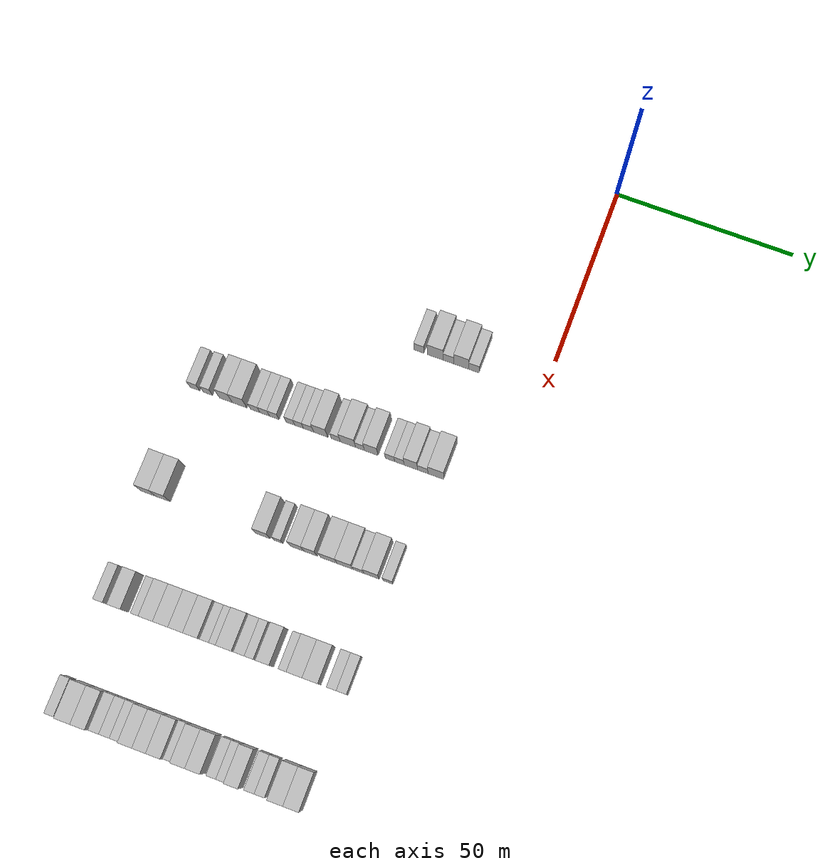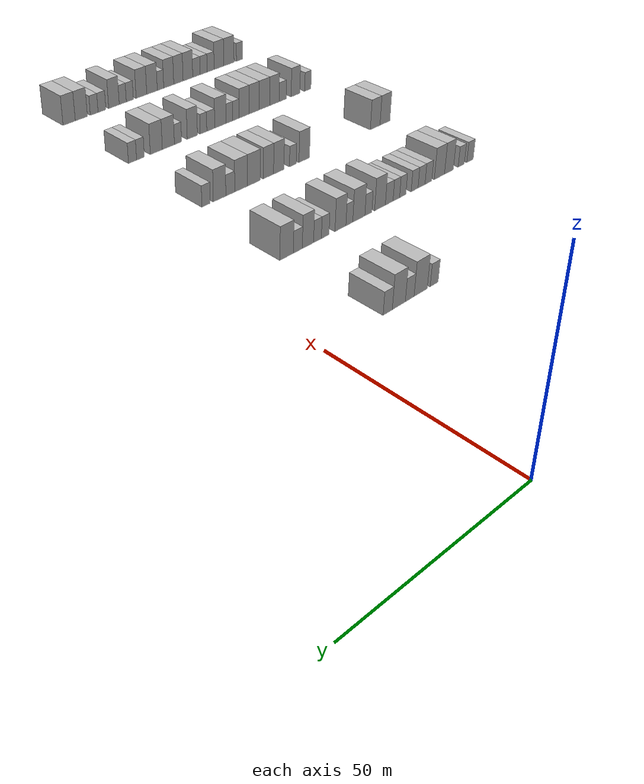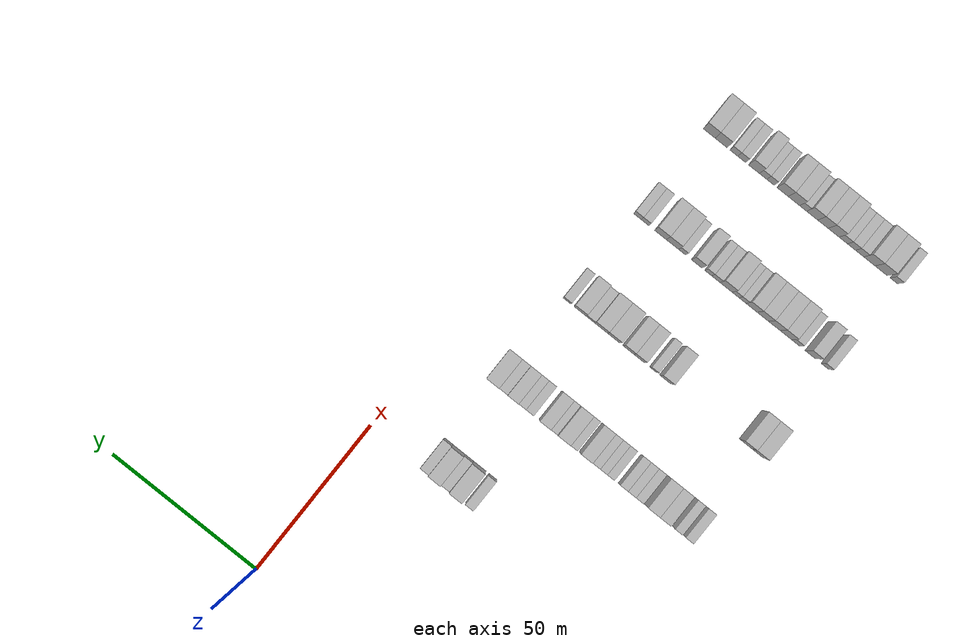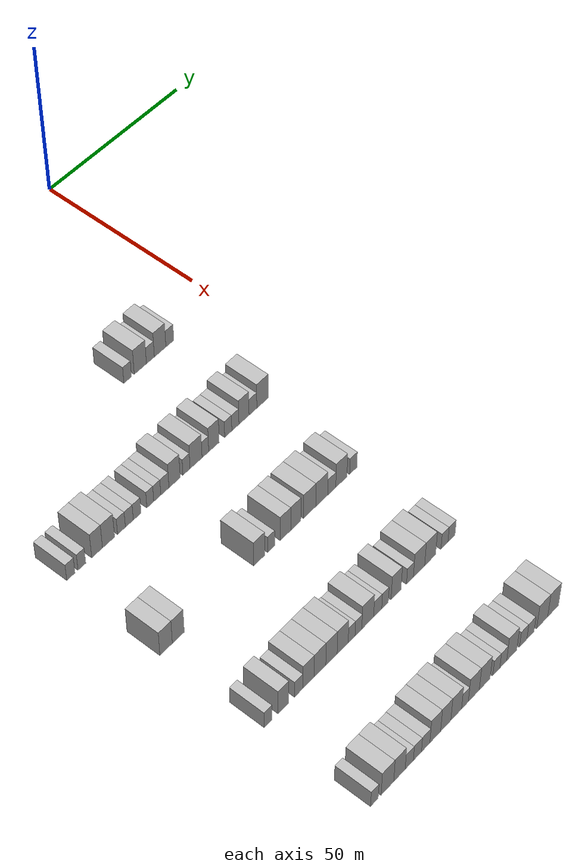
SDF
<sdf version="1.6">
 <world name="default">
  <model name="building_337">
   <static>1</static>
   <pose>55.0000 -34.7256 0 0.000000 0.000000 0.000000</pose>
   <link name="link">
    <pose>0 0 3.00 0 0 0</pose>
    <collision name="collision"><geometry><box><size>10.0000 2.7572 6.0000</size></box></geometry></collision>
    <visual name="visual">
     <cast_shadows>0</cast_shadows>
     <geometry><box><size>10.0000 2.7572 6.0000</size></box></geometry>
     <material>
      <script>
       <uri>model://HANNAS_wall/materials/scripts</uri>
       <uri>model://HANNAS_wall/materials/textures</uri>
       <name>vrc/HANNAS_wall</name>
      </script>
     </material>
    </visual>
   </link>
  </model>
  <model name="building_338">
   <static>1</static>
   <pose>55.0000 -30.1312 0 0.000000 0.000000 0.000000</pose>
   <link name="link">
    <pose>0 0 4.50 0 0 0</pose>
    <collision name="collision"><geometry><box><size>10.0000 4.4316 9.0000</size></box></geometry></collision>
    <visual name="visual">
     <cast_shadows>0</cast_shadows>
     <geometry><box><size>10.0000 4.4316 9.0000</size></box></geometry>
     <material>
      <script>
       <uri>model://HANNAS_wall/materials/scripts</uri>
       <uri>model://HANNAS_wall/materials/textures</uri>
       <name>vrc/HANNAS_wall</name>
      </script>
     </material>
    </visual>
   </link>
  </model>
  <model name="building_339">
   <static>1</static>
   <pose>55.0000 -26.4673 0 0.000000 0.000000 0.000000</pose>
   <link name="link">
    <pose>0 0 3.00 0 0 0</pose>
    <collision name="collision"><geometry><box><size>10.0000 2.8962 6.0000</size></box></geometry></collision>
    <visual name="visual">
     <cast_shadows>0</cast_shadows>
     <geometry><box><size>10.0000 2.8962 6.0000</size></box></geometry>
     <material>
      <script>
       <uri>model://HANNAS_wall/materials/scripts</uri>
       <uri>model://HANNAS_wall/materials/textures</uri>
       <name>vrc/HANNAS_wall</name>
      </script>
     </material>
    </visual>
   </link>
  </model>
  <model name="building_340">
   <static>1</static>
   <pose>55.0000 -22.8978 0 0.000000 0.000000 0.000000</pose>
   <link name="link">
    <pose>0 0 4.50 0 0 0</pose>
    <collision name="collision"><geometry><box><size>10.0000 4.2430 9.0000</size></box></geometry></collision>
    <visual name="visual">
     <cast_shadows>0</cast_shadows>
     <geometry><box><size>10.0000 4.2430 9.0000</size></box></geometry>
     <material>
      <script>
       <uri>model://HANNAS_wall/materials/scripts</uri>
       <uri>model://HANNAS_wall/materials/textures</uri>
       <name>vrc/HANNAS_wall</name>
      </script>
     </material>
    </visual>
   </link>
  </model>
  <model name="building_341">
   <static>1</static>
   <pose>55.0000 -19.3058 0 0.000000 0.000000 0.000000</pose>
   <link name="link">
    <pose>0 0 3.00 0 0 0</pose>
    <collision name="collision"><geometry><box><size>10.0000 2.9410 6.0000</size></box></geometry></collision>
    <visual name="visual">
     <cast_shadows>0</cast_shadows>
     <geometry><box><size>10.0000 2.9410 6.0000</size></box></geometry>
     <material>
      <script>
       <uri>model://HANNAS_wall/materials/scripts</uri>
       <uri>model://HANNAS_wall/materials/textures</uri>
       <name>vrc/HANNAS_wall</name>
      </script>
     </material>
    </visual>
   </link>
  </model>
  <model name="building_565">
   <static>1</static>
   <pose>85.0000 -86.3011 0 0.000000 0.000000 0.000000</pose>
   <link name="link">
    <pose>0 0 3.00 0 0 0</pose>
    <collision name="collision"><geometry><box><size>10.0000 2.7403 6.0000</size></box></geometry></collision>
    <visual name="visual">
     <cast_shadows>0</cast_shadows>
     <geometry><box><size>10.0000 2.7403 6.0000</size></box></geometry>
     <material>
      <script>
       <uri>model://HANNAS_wall/materials/scripts</uri>
       <uri>model://HANNAS_wall/materials/textures</uri>
       <name>vrc/HANNAS_wall</name>
      </script>
     </material>
    </visual>
   </link>
  </model>
  <model name="building_566">
   <static>1</static>
   <pose>85.0000 -82.6368 0 0.000000 0.000000 0.000000</pose>
   <link name="link">
    <pose>0 0 3.00 0 0 0</pose>
    <collision name="collision"><geometry><box><size>10.0000 2.5883 6.0000</size></box></geometry></collision>
    <visual name="visual">
     <cast_shadows>0</cast_shadows>
     <geometry><box><size>10.0000 2.5883 6.0000</size></box></geometry>
     <material>
      <script>
       <uri>model://HANNAS_wall/materials/scripts</uri>
       <uri>model://HANNAS_wall/materials/textures</uri>
       <name>vrc/HANNAS_wall</name>
      </script>
     </material>
    </visual>
   </link>
  </model>
  <model name="building_567">
   <static>1</static>
   <pose>85.0000 -77.5310 0 0.000000 0.000000 0.000000</pose>
   <link name="link">
    <pose>0 0 4.50 0 0 0</pose>
    <collision name="collision"><geometry><box><size>10.0000 3.6233 9.0000</size></box></geometry></collision>
    <visual name="visual">
     <cast_shadows>0</cast_shadows>
     <geometry><box><size>10.0000 3.6233 9.0000</size></box></geometry>
     <material>
      <script>
       <uri>model://HANNAS_wall/materials/scripts</uri>
       <uri>model://HANNAS_wall/materials/textures</uri>
       <name>vrc/HANNAS_wall</name>
      </script>
     </material>
    </visual>
   </link>
  </model>
  <model name="building_568">
   <static>1</static>
   <pose>85.0000 -73.6620 0 0.000000 0.000000 0.000000</pose>
   <link name="link">
    <pose>0 0 4.50 0 0 0</pose>
    <collision name="collision"><geometry><box><size>10.0000 4.1146 9.0000</size></box></geometry></collision>
    <visual name="visual">
     <cast_shadows>0</cast_shadows>
     <geometry><box><size>10.0000 4.1146 9.0000</size></box></geometry>
     <material>
      <script>
       <uri>model://HANNAS_wall/materials/scripts</uri>
       <uri>model://HANNAS_wall/materials/textures</uri>
       <name>vrc/HANNAS_wall</name>
      </script>
     </material>
    </visual>
   </link>
  </model>
  <model name="building_569">
   <static>1</static>
   <pose>85.0000 -69.2673 0 0.000000 0.000000 0.000000</pose>
   <link name="link">
    <pose>0 0 3.00 0 0 0</pose>
    <collision name="collision"><geometry><box><size>10.0000 2.6748 6.0000</size></box></geometry></collision>
    <visual name="visual">
     <cast_shadows>0</cast_shadows>
     <geometry><box><size>10.0000 2.6748 6.0000</size></box></geometry>
     <material>
      <script>
       <uri>model://HANNAS_wall/materials/scripts</uri>
       <uri>model://HANNAS_wall/materials/textures</uri>
       <name>vrc/HANNAS_wall</name>
      </script>
     </material>
    </visual>
   </link>
  </model>
  <model name="building_570">
   <static>1</static>
   <pose>85.0000 -66.5686 0 0.000000 0.000000 0.000000</pose>
   <link name="link">
    <pose>0 0 3.00 0 0 0</pose>
    <collision name="collision"><geometry><box><size>10.0000 2.7226 6.0000</size></box></geometry></collision>
    <visual name="visual">
     <cast_shadows>0</cast_shadows>
     <geometry><box><size>10.0000 2.7226 6.0000</size></box></geometry>
     <material>
      <script>
       <uri>model://HANNAS_wall/materials/scripts</uri>
       <uri>model://HANNAS_wall/materials/textures</uri>
       <name>vrc/HANNAS_wall</name>
      </script>
     </material>
    </visual>
   </link>
  </model>
  <model name="building_571">
   <static>1</static>
   <pose>85.0000 -63.8651 0 0.000000 0.000000 0.000000</pose>
   <link name="link">
    <pose>0 0 3.00 0 0 0</pose>
    <collision name="collision"><geometry><box><size>10.0000 2.6843 6.0000</size></box></geometry></collision>
    <visual name="visual">
     <cast_shadows>0</cast_shadows>
     <geometry><box><size>10.0000 2.6843 6.0000</size></box></geometry>
     <material>
      <script>
       <uri>model://HANNAS_wall/materials/scripts</uri>
       <uri>model://HANNAS_wall/materials/textures</uri>
       <name>vrc/HANNAS_wall</name>
      </script>
     </material>
    </visual>
   </link>
  </model>
  <model name="building_572">
   <static>1</static>
   <pose>85.0000 -59.3180 0 0.000000 0.000000 0.000000</pose>
   <link name="link">
    <pose>0 0 3.00 0 0 0</pose>
    <collision name="collision"><geometry><box><size>10.0000 2.4099 6.0000</size></box></geometry></collision>
    <visual name="visual">
     <cast_shadows>0</cast_shadows>
     <geometry><box><size>10.0000 2.4099 6.0000</size></box></geometry>
     <material>
      <script>
       <uri>model://HANNAS_wall/materials/scripts</uri>
       <uri>model://HANNAS_wall/materials/textures</uri>
       <name>vrc/HANNAS_wall</name>
      </script>
     </material>
    </visual>
   </link>
  </model>
  <model name="building_573">
   <static>1</static>
   <pose>85.0000 -56.8852 0 0.000000 0.000000 0.000000</pose>
   <link name="link">
    <pose>0 0 3.00 0 0 0</pose>
    <collision name="collision"><geometry><box><size>10.0000 2.4558 6.0000</size></box></geometry></collision>
    <visual name="visual">
     <cast_shadows>0</cast_shadows>
     <geometry><box><size>10.0000 2.4558 6.0000</size></box></geometry>
     <material>
      <script>
       <uri>model://HANNAS_wall/materials/scripts</uri>
       <uri>model://HANNAS_wall/materials/textures</uri>
       <name>vrc/HANNAS_wall</name>
      </script>
     </material>
    </visual>
   </link>
  </model>
  <model name="building_574">
   <static>1</static>
   <pose>85.0000 -54.2247 0 0.000000 0.000000 0.000000</pose>
   <link name="link">
    <pose>0 0 3.00 0 0 0</pose>
    <collision name="collision"><geometry><box><size>10.0000 2.8651 6.0000</size></box></geometry></collision>
    <visual name="visual">
     <cast_shadows>0</cast_shadows>
     <geometry><box><size>10.0000 2.8651 6.0000</size></box></geometry>
     <material>
      <script>
       <uri>model://HANNAS_wall/materials/scripts</uri>
       <uri>model://HANNAS_wall/materials/textures</uri>
       <name>vrc/HANNAS_wall</name>
      </script>
     </material>
    </visual>
   </link>
  </model>
  <model name="building_575">
   <static>1</static>
   <pose>85.0000 -50.8214 0 0.000000 0.000000 0.000000</pose>
   <link name="link">
    <pose>0 0 4.50 0 0 0</pose>
    <collision name="collision"><geometry><box><size>10.0000 3.9415 9.0000</size></box></geometry></collision>
    <visual name="visual">
     <cast_shadows>0</cast_shadows>
     <geometry><box><size>10.0000 3.9415 9.0000</size></box></geometry>
     <material>
      <script>
       <uri>model://HANNAS_wall/materials/scripts</uri>
       <uri>model://HANNAS_wall/materials/textures</uri>
       <name>vrc/HANNAS_wall</name>
      </script>
     </material>
    </visual>
   </link>
  </model>
  <model name="building_576">
   <static>1</static>
   <pose>85.0000 -46.5933 0 0.000000 0.000000 0.000000</pose>
   <link name="link">
    <pose>0 0 3.00 0 0 0</pose>
    <collision name="collision"><geometry><box><size>10.0000 2.5146 6.0000</size></box></geometry></collision>
    <visual name="visual">
     <cast_shadows>0</cast_shadows>
     <geometry><box><size>10.0000 2.5146 6.0000</size></box></geometry>
     <material>
      <script>
       <uri>model://HANNAS_wall/materials/scripts</uri>
       <uri>model://HANNAS_wall/materials/textures</uri>
       <name>vrc/HANNAS_wall</name>
      </script>
     </material>
    </visual>
   </link>
  </model>
  <model name="building_577">
   <static>1</static>
   <pose>85.0000 -43.1773 0 0.000000 0.000000 0.000000</pose>
   <link name="link">
    <pose>0 0 4.50 0 0 0</pose>
    <collision name="collision"><geometry><box><size>10.0000 4.3173 9.0000</size></box></geometry></collision>
    <visual name="visual">
     <cast_shadows>0</cast_shadows>
     <geometry><box><size>10.0000 4.3173 9.0000</size></box></geometry>
     <material>
      <script>
       <uri>model://HANNAS_wall/materials/scripts</uri>
       <uri>model://HANNAS_wall/materials/textures</uri>
       <name>vrc/HANNAS_wall</name>
      </script>
     </material>
    </visual>
   </link>
  </model>
  <model name="building_578">
   <static>1</static>
   <pose>85.0000 -39.8186 0 0.000000 0.000000 0.000000</pose>
   <link name="link">
    <pose>0 0 3.00 0 0 0</pose>
    <collision name="collision"><geometry><box><size>10.0000 2.4002 6.0000</size></box></geometry></collision>
    <visual name="visual">
     <cast_shadows>0</cast_shadows>
     <geometry><box><size>10.0000 2.4002 6.0000</size></box></geometry>
     <material>
      <script>
       <uri>model://HANNAS_wall/materials/scripts</uri>
       <uri>model://HANNAS_wall/materials/textures</uri>
       <name>vrc/HANNAS_wall</name>
      </script>
     </material>
    </visual>
   </link>
  </model>
  <model name="building_579">
   <static>1</static>
   <pose>85.0000 -36.7192 0 0.000000 0.000000 0.000000</pose>
   <link name="link">
    <pose>0 0 4.50 0 0 0</pose>
    <collision name="collision"><geometry><box><size>10.0000 3.7986 9.0000</size></box></geometry></collision>
    <visual name="visual">
     <cast_shadows>0</cast_shadows>
     <geometry><box><size>10.0000 3.7986 9.0000</size></box></geometry>
     <material>
      <script>
       <uri>model://HANNAS_wall/materials/scripts</uri>
       <uri>model://HANNAS_wall/materials/textures</uri>
       <name>vrc/HANNAS_wall</name>
      </script>
     </material>
    </visual>
   </link>
  </model>
  <model name="building_580">
   <static>1</static>
   <pose>85.0000 -31.5154 0 0.000000 0.000000 0.000000</pose>
   <link name="link">
    <pose>0 0 3.00 0 0 0</pose>
    <collision name="collision"><geometry><box><size>10.0000 2.6091 6.0000</size></box></geometry></collision>
    <visual name="visual">
     <cast_shadows>0</cast_shadows>
     <geometry><box><size>10.0000 2.6091 6.0000</size></box></geometry>
     <material>
      <script>
       <uri>model://HANNAS_wall/materials/scripts</uri>
       <uri>model://HANNAS_wall/materials/textures</uri>
       <name>vrc/HANNAS_wall</name>
      </script>
     </material>
    </visual>
   </link>
  </model>
  <model name="building_581">
   <static>1</static>
   <pose>85.0000 -28.9101 0 0.000000 0.000000 0.000000</pose>
   <link name="link">
    <pose>0 0 3.00 0 0 0</pose>
    <collision name="collision"><geometry><box><size>10.0000 2.6015 6.0000</size></box></geometry></collision>
    <visual name="visual">
     <cast_shadows>0</cast_shadows>
     <geometry><box><size>10.0000 2.6015 6.0000</size></box></geometry>
     <material>
      <script>
       <uri>model://HANNAS_wall/materials/scripts</uri>
       <uri>model://HANNAS_wall/materials/textures</uri>
       <name>vrc/HANNAS_wall</name>
      </script>
     </material>
    </visual>
   </link>
  </model>
  <model name="building_582">
   <static>1</static>
   <pose>85.0000 -25.7456 0 0.000000 0.000000 0.000000</pose>
   <link name="link">
    <pose>0 0 4.50 0 0 0</pose>
    <collision name="collision"><geometry><box><size>10.0000 3.7276 9.0000</size></box></geometry></collision>
    <visual name="visual">
     <cast_shadows>0</cast_shadows>
     <geometry><box><size>10.0000 3.7276 9.0000</size></box></geometry>
     <material>
      <script>
       <uri>model://HANNAS_wall/materials/scripts</uri>
       <uri>model://HANNAS_wall/materials/textures</uri>
       <name>vrc/HANNAS_wall</name>
      </script>
     </material>
    </visual>
   </link>
  </model>
  <model name="building_583">
   <static>1</static>
   <pose>85.0000 -22.4313 0 0.000000 0.000000 0.000000</pose>
   <link name="link">
    <pose>0 0 3.00 0 0 0</pose>
    <collision name="collision"><geometry><box><size>10.0000 2.9010 6.0000</size></box></geometry></collision>
    <visual name="visual">
     <cast_shadows>0</cast_shadows>
     <geometry><box><size>10.0000 2.9010 6.0000</size></box></geometry>
     <material>
      <script>
       <uri>model://HANNAS_wall/materials/scripts</uri>
       <uri>model://HANNAS_wall/materials/textures</uri>
       <name>vrc/HANNAS_wall</name>
      </script>
     </material>
    </visual>
   </link>
  </model>
  <model name="building_584">
   <static>1</static>
   <pose>85.0000 -18.8138 0 0.000000 0.000000 0.000000</pose>
   <link name="link">
    <pose>0 0 4.50 0 0 0</pose>
    <collision name="collision"><geometry><box><size>10.0000 4.3341 9.0000</size></box></geometry></collision>
    <visual name="visual">
     <cast_shadows>0</cast_shadows>
     <geometry><box><size>10.0000 4.3341 9.0000</size></box></geometry>
     <material>
      <script>
       <uri>model://HANNAS_wall/materials/scripts</uri>
       <uri>model://HANNAS_wall/materials/textures</uri>
       <name>vrc/HANNAS_wall</name>
      </script>
     </material>
    </visual>
   </link>
  </model>
  <model name="building_795">
   <static>1</static>
   <pose>115.0000 -86.8850 0 0.000000 0.000000 0.000000</pose>
   <link name="link">
    <pose>0 0 4.50 0 0 0</pose>
    <collision name="collision"><geometry><box><size>10.0000 4.1653 9.0000</size></box></geometry></collision>
    <visual name="visual">
     <cast_shadows>0</cast_shadows>
     <geometry><box><size>10.0000 4.1653 9.0000</size></box></geometry>
     <material>
      <script>
       <uri>model://HANNAS_wall/materials/scripts</uri>
       <uri>model://HANNAS_wall/materials/textures</uri>
       <name>vrc/HANNAS_wall</name>
      </script>
     </material>
    </visual>
   </link>
  </model>
  <model name="building_796">
   <static>1</static>
   <pose>115.0000 -82.7935 0 0.000000 0.000000 0.000000</pose>
   <link name="link">
    <pose>0 0 4.50 0 0 0</pose>
    <collision name="collision"><geometry><box><size>10.0000 4.0176 9.0000</size></box></geometry></collision>
    <visual name="visual">
     <cast_shadows>0</cast_shadows>
     <geometry><box><size>10.0000 4.0176 9.0000</size></box></geometry>
     <material>
      <script>
       <uri>model://HANNAS_wall/materials/scripts</uri>
       <uri>model://HANNAS_wall/materials/textures</uri>
       <name>vrc/HANNAS_wall</name>
      </script>
     </material>
    </visual>
   </link>
  </model>
  <model name="building_797">
   <static>1</static>
   <pose>115.0000 -54.8780 0 0.000000 0.000000 0.000000</pose>
   <link name="link">
    <pose>0 0 4.50 0 0 0</pose>
    <collision name="collision"><geometry><box><size>10.0000 3.9379 9.0000</size></box></geometry></collision>
    <visual name="visual">
     <cast_shadows>0</cast_shadows>
     <geometry><box><size>10.0000 3.9379 9.0000</size></box></geometry>
     <material>
      <script>
       <uri>model://HANNAS_wall/materials/scripts</uri>
       <uri>model://HANNAS_wall/materials/textures</uri>
       <name>vrc/HANNAS_wall</name>
      </script>
     </material>
    </visual>
   </link>
  </model>
  <model name="building_798">
   <static>1</static>
   <pose>115.0000 -50.6640 0 0.000000 0.000000 0.000000</pose>
   <link name="link">
    <pose>0 0 3.00 0 0 0</pose>
    <collision name="collision"><geometry><box><size>10.0000 2.4900 6.0000</size></box></geometry></collision>
    <visual name="visual">
     <cast_shadows>0</cast_shadows>
     <geometry><box><size>10.0000 2.4900 6.0000</size></box></geometry>
     <material>
      <script>
       <uri>model://HANNAS_wall/materials/scripts</uri>
       <uri>model://HANNAS_wall/materials/textures</uri>
       <name>vrc/HANNAS_wall</name>
      </script>
     </material>
    </visual>
   </link>
  </model>
  <model name="building_799">
   <static>1</static>
   <pose>115.0000 -45.5513 0 0.000000 0.000000 0.000000</pose>
   <link name="link">
    <pose>0 0 4.50 0 0 0</pose>
    <collision name="collision"><geometry><box><size>10.0000 3.7354 9.0000</size></box></geometry></collision>
    <visual name="visual">
     <cast_shadows>0</cast_shadows>
     <geometry><box><size>10.0000 3.7354 9.0000</size></box></geometry>
     <material>
      <script>
       <uri>model://HANNAS_wall/materials/scripts</uri>
       <uri>model://HANNAS_wall/materials/textures</uri>
       <name>vrc/HANNAS_wall</name>
      </script>
     </material>
    </visual>
   </link>
  </model>
  <model name="building_800">
   <static>1</static>
   <pose>115.0000 -41.8556 0 0.000000 0.000000 0.000000</pose>
   <link name="link">
    <pose>0 0 4.50 0 0 0</pose>
    <collision name="collision"><geometry><box><size>10.0000 3.6561 9.0000</size></box></geometry></collision>
    <visual name="visual">
     <cast_shadows>0</cast_shadows>
     <geometry><box><size>10.0000 3.6561 9.0000</size></box></geometry>
     <material>
      <script>
       <uri>model://HANNAS_wall/materials/scripts</uri>
       <uri>model://HANNAS_wall/materials/textures</uri>
       <name>vrc/HANNAS_wall</name>
      </script>
     </material>
    </visual>
   </link>
  </model>
  <model name="building_801">
   <static>1</static>
   <pose>115.0000 -36.7942 0 0.000000 0.000000 0.000000</pose>
   <link name="link">
    <pose>0 0 4.50 0 0 0</pose>
    <collision name="collision"><geometry><box><size>10.0000 4.4665 9.0000</size></box></geometry></collision>
    <visual name="visual">
     <cast_shadows>0</cast_shadows>
     <geometry><box><size>10.0000 4.4665 9.0000</size></box></geometry>
     <material>
      <script>
       <uri>model://HANNAS_wall/materials/scripts</uri>
       <uri>model://HANNAS_wall/materials/textures</uri>
       <name>vrc/HANNAS_wall</name>
      </script>
     </material>
    </visual>
   </link>
  </model>
  <model name="building_802">
   <static>1</static>
   <pose>115.0000 -32.3723 0 0.000000 0.000000 0.000000</pose>
   <link name="link">
    <pose>0 0 4.50 0 0 0</pose>
    <collision name="collision"><geometry><box><size>10.0000 4.3774 9.0000</size></box></geometry></collision>
    <visual name="visual">
     <cast_shadows>0</cast_shadows>
     <geometry><box><size>10.0000 4.3774 9.0000</size></box></geometry>
     <material>
      <script>
       <uri>model://HANNAS_wall/materials/scripts</uri>
       <uri>model://HANNAS_wall/materials/textures</uri>
       <name>vrc/HANNAS_wall</name>
      </script>
     </material>
    </visual>
   </link>
  </model>
  <model name="building_803">
   <static>1</static>
   <pose>115.0000 -28.6866 0 0.000000 0.000000 0.000000</pose>
   <link name="link">
    <pose>0 0 3.00 0 0 0</pose>
    <collision name="collision"><geometry><box><size>10.0000 2.9939 6.0000</size></box></geometry></collision>
    <visual name="visual">
     <cast_shadows>0</cast_shadows>
     <geometry><box><size>10.0000 2.9939 6.0000</size></box></geometry>
     <material>
      <script>
       <uri>model://HANNAS_wall/materials/scripts</uri>
       <uri>model://HANNAS_wall/materials/textures</uri>
       <name>vrc/HANNAS_wall</name>
      </script>
     </material>
    </visual>
   </link>
  </model>
  <model name="building_804">
   <static>1</static>
   <pose>115.0000 -25.1018 0 0.000000 0.000000 0.000000</pose>
   <link name="link">
    <pose>0 0 4.50 0 0 0</pose>
    <collision name="collision"><geometry><box><size>10.0000 4.1757 9.0000</size></box></geometry></collision>
    <visual name="visual">
     <cast_shadows>0</cast_shadows>
     <geometry><box><size>10.0000 4.1757 9.0000</size></box></geometry>
     <material>
      <script>
       <uri>model://HANNAS_wall/materials/scripts</uri>
       <uri>model://HANNAS_wall/materials/textures</uri>
       <name>vrc/HANNAS_wall</name>
      </script>
     </material>
    </visual>
   </link>
  </model>
  <model name="building_805">
   <static>1</static>
   <pose>115.0000 -20.6495 0 0.000000 0.000000 0.000000</pose>
   <link name="link">
    <pose>0 0 3.00 0 0 0</pose>
    <collision name="collision"><geometry><box><size>10.0000 2.7288 6.0000</size></box></geometry></collision>
    <visual name="visual">
     <cast_shadows>0</cast_shadows>
     <geometry><box><size>10.0000 2.7288 6.0000</size></box></geometry>
     <material>
      <script>
       <uri>model://HANNAS_wall/materials/scripts</uri>
       <uri>model://HANNAS_wall/materials/textures</uri>
       <name>vrc/HANNAS_wall</name>
      </script>
     </material>
    </visual>
   </link>
  </model>
  <model name="building_1000">
   <static>1</static>
   <pose>145.0000 -86.7185 0 0.000000 0.000000 0.000000</pose>
   <link name="link">
    <pose>0 0 3.00 0 0 0</pose>
    <collision name="collision"><geometry><box><size>10.0000 2.6367 6.0000</size></box></geometry></collision>
    <visual name="visual">
     <cast_shadows>0</cast_shadows>
     <geometry><box><size>10.0000 2.6367 6.0000</size></box></geometry>
     <material>
      <script>
       <uri>model://HANNAS_wall/materials/scripts</uri>
       <uri>model://HANNAS_wall/materials/textures</uri>
       <name>vrc/HANNAS_wall</name>
      </script>
     </material>
    </visual>
   </link>
  </model>
  <model name="building_1001">
   <static>1</static>
   <pose>145.0000 -81.5955 0 0.000000 0.000000 0.000000</pose>
   <link name="link">
    <pose>0 0 4.50 0 0 0</pose>
    <collision name="collision"><geometry><box><size>10.0000 3.6094 9.0000</size></box></geometry></collision>
    <visual name="visual">
     <cast_shadows>0</cast_shadows>
     <geometry><box><size>10.0000 3.6094 9.0000</size></box></geometry>
     <material>
      <script>
       <uri>model://HANNAS_wall/materials/scripts</uri>
       <uri>model://HANNAS_wall/materials/textures</uri>
       <name>vrc/HANNAS_wall</name>
      </script>
     </material>
    </visual>
   </link>
  </model>
  <model name="building_1002">
   <static>1</static>
   <pose>145.0000 -76.3672 0 0.000000 0.000000 0.000000</pose>
   <link name="link">
    <pose>0 0 3.00 0 0 0</pose>
    <collision name="collision"><geometry><box><size>10.0000 2.8471 6.0000</size></box></geometry></collision>
    <visual name="visual">
     <cast_shadows>0</cast_shadows>
     <geometry><box><size>10.0000 2.8471 6.0000</size></box></geometry>
     <material>
      <script>
       <uri>model://HANNAS_wall/materials/scripts</uri>
       <uri>model://HANNAS_wall/materials/textures</uri>
       <name>vrc/HANNAS_wall</name>
      </script>
     </material>
    </visual>
   </link>
  </model>
  <model name="building_1003">
   <static>1</static>
   <pose>145.0000 -73.0179 0 0.000000 0.000000 0.000000</pose>
   <link name="link">
    <pose>0 0 4.50 0 0 0</pose>
    <collision name="collision"><geometry><box><size>10.0000 3.8515 9.0000</size></box></geometry></collision>
    <visual name="visual">
     <cast_shadows>0</cast_shadows>
     <geometry><box><size>10.0000 3.8515 9.0000</size></box></geometry>
     <material>
      <script>
       <uri>model://HANNAS_wall/materials/scripts</uri>
       <uri>model://HANNAS_wall/materials/textures</uri>
       <name>vrc/HANNAS_wall</name>
      </script>
     </material>
    </visual>
   </link>
  </model>
  <model name="building_1004">
   <static>1</static>
   <pose>145.0000 -69.0531 0 0.000000 0.000000 0.000000</pose>
   <link name="link">
    <pose>0 0 4.50 0 0 0</pose>
    <collision name="collision"><geometry><box><size>10.0000 4.0781 9.0000</size></box></geometry></collision>
    <visual name="visual">
     <cast_shadows>0</cast_shadows>
     <geometry><box><size>10.0000 4.0781 9.0000</size></box></geometry>
     <material>
      <script>
       <uri>model://HANNAS_wall/materials/scripts</uri>
       <uri>model://HANNAS_wall/materials/textures</uri>
       <name>vrc/HANNAS_wall</name>
      </script>
     </material>
    </visual>
   </link>
  </model>
  <model name="building_1005">
   <static>1</static>
   <pose>145.0000 -65.0297 0 0.000000 0.000000 0.000000</pose>
   <link name="link">
    <pose>0 0 4.50 0 0 0</pose>
    <collision name="collision"><geometry><box><size>10.0000 3.9687 9.0000</size></box></geometry></collision>
    <visual name="visual">
     <cast_shadows>0</cast_shadows>
     <geometry><box><size>10.0000 3.9687 9.0000</size></box></geometry>
     <material>
      <script>
       <uri>model://HANNAS_wall/materials/scripts</uri>
       <uri>model://HANNAS_wall/materials/textures</uri>
       <name>vrc/HANNAS_wall</name>
      </script>
     </material>
    </visual>
   </link>
  </model>
  <model name="building_1006">
   <static>1</static>
   <pose>145.0000 -61.0974 0 0.000000 0.000000 0.000000</pose>
   <link name="link">
    <pose>0 0 4.50 0 0 0</pose>
    <collision name="collision"><geometry><box><size>10.0000 3.8959 9.0000</size></box></geometry></collision>
    <visual name="visual">
     <cast_shadows>0</cast_shadows>
     <geometry><box><size>10.0000 3.8959 9.0000</size></box></geometry>
     <material>
      <script>
       <uri>model://HANNAS_wall/materials/scripts</uri>
       <uri>model://HANNAS_wall/materials/textures</uri>
       <name>vrc/HANNAS_wall</name>
      </script>
     </material>
    </visual>
   </link>
  </model>
  <model name="building_1007">
   <static>1</static>
   <pose>145.0000 -57.9326 0 0.000000 0.000000 0.000000</pose>
   <link name="link">
    <pose>0 0 3.00 0 0 0</pose>
    <collision name="collision"><geometry><box><size>10.0000 2.4338 6.0000</size></box></geometry></collision>
    <visual name="visual">
     <cast_shadows>0</cast_shadows>
     <geometry><box><size>10.0000 2.4338 6.0000</size></box></geometry>
     <material>
      <script>
       <uri>model://HANNAS_wall/materials/scripts</uri>
       <uri>model://HANNAS_wall/materials/textures</uri>
       <name>vrc/HANNAS_wall</name>
      </script>
     </material>
    </visual>
   </link>
  </model>
  <model name="building_1008">
   <static>1</static>
   <pose>145.0000 -55.5121 0 0.000000 0.000000 0.000000</pose>
   <link name="link">
    <pose>0 0 3.00 0 0 0</pose>
    <collision name="collision"><geometry><box><size>10.0000 2.4072 6.0000</size></box></geometry></collision>
    <visual name="visual">
     <cast_shadows>0</cast_shadows>
     <geometry><box><size>10.0000 2.4072 6.0000</size></box></geometry>
     <material>
      <script>
       <uri>model://HANNAS_wall/materials/scripts</uri>
       <uri>model://HANNAS_wall/materials/textures</uri>
       <name>vrc/HANNAS_wall</name>
      </script>
     </material>
    </visual>
   </link>
  </model>
  <model name="building_1009">
   <static>1</static>
   <pose>145.0000 -52.1856 0 0.000000 0.000000 0.000000</pose>
   <link name="link">
    <pose>0 0 4.50 0 0 0</pose>
    <collision name="collision"><geometry><box><size>10.0000 4.2460 9.0000</size></box></geometry></collision>
    <visual name="visual">
     <cast_shadows>0</cast_shadows>
     <geometry><box><size>10.0000 4.2460 9.0000</size></box></geometry>
     <material>
      <script>
       <uri>model://HANNAS_wall/materials/scripts</uri>
       <uri>model://HANNAS_wall/materials/textures</uri>
       <name>vrc/HANNAS_wall</name>
      </script>
     </material>
    </visual>
   </link>
  </model>
  <model name="building_1010">
   <static>1</static>
   <pose>145.0000 -48.6075 0 0.000000 0.000000 0.000000</pose>
   <link name="link">
    <pose>0 0 3.00 0 0 0</pose>
    <collision name="collision"><geometry><box><size>10.0000 2.9101 6.0000</size></box></geometry></collision>
    <visual name="visual">
     <cast_shadows>0</cast_shadows>
     <geometry><box><size>10.0000 2.9101 6.0000</size></box></geometry>
     <material>
      <script>
       <uri>model://HANNAS_wall/materials/scripts</uri>
       <uri>model://HANNAS_wall/materials/textures</uri>
       <name>vrc/HANNAS_wall</name>
      </script>
     </material>
    </visual>
   </link>
  </model>
  <model name="building_1011">
   <static>1</static>
   <pose>145.0000 -45.9479 0 0.000000 0.000000 0.000000</pose>
   <link name="link">
    <pose>0 0 3.00 0 0 0</pose>
    <collision name="collision"><geometry><box><size>10.0000 2.4091 6.0000</size></box></geometry></collision>
    <visual name="visual">
     <cast_shadows>0</cast_shadows>
     <geometry><box><size>10.0000 2.4091 6.0000</size></box></geometry>
     <material>
      <script>
       <uri>model://HANNAS_wall/materials/scripts</uri>
       <uri>model://HANNAS_wall/materials/textures</uri>
       <name>vrc/HANNAS_wall</name>
      </script>
     </material>
    </visual>
   </link>
  </model>
  <model name="building_1012">
   <static>1</static>
   <pose>145.0000 -41.9186 0 0.000000 0.000000 0.000000</pose>
   <link name="link">
    <pose>0 0 4.50 0 0 0</pose>
    <collision name="collision"><geometry><box><size>10.0000 3.6495 9.0000</size></box></geometry></collision>
    <visual name="visual">
     <cast_shadows>0</cast_shadows>
     <geometry><box><size>10.0000 3.6495 9.0000</size></box></geometry>
     <material>
      <script>
       <uri>model://HANNAS_wall/materials/scripts</uri>
       <uri>model://HANNAS_wall/materials/textures</uri>
       <name>vrc/HANNAS_wall</name>
      </script>
     </material>
    </visual>
   </link>
  </model>
  <model name="building_1013">
   <static>1</static>
   <pose>145.0000 -36.8328 0 0.000000 0.000000 0.000000</pose>
   <link name="link">
    <pose>0 0 3.00 0 0 0</pose>
    <collision name="collision"><geometry><box><size>10.0000 2.5220 6.0000</size></box></geometry></collision>
    <visual name="visual">
     <cast_shadows>0</cast_shadows>
     <geometry><box><size>10.0000 2.5220 6.0000</size></box></geometry>
     <material>
      <script>
       <uri>model://HANNAS_wall/materials/scripts</uri>
       <uri>model://HANNAS_wall/materials/textures</uri>
       <name>vrc/HANNAS_wall</name>
      </script>
     </material>
    </visual>
   </link>
  </model>
  <model name="building_1014">
   <static>1</static>
   <pose>145.0000 -33.4736 0 0.000000 0.000000 0.000000</pose>
   <link name="link">
    <pose>0 0 4.50 0 0 0</pose>
    <collision name="collision"><geometry><box><size>10.0000 4.1964 9.0000</size></box></geometry></collision>
    <visual name="visual">
     <cast_shadows>0</cast_shadows>
     <geometry><box><size>10.0000 4.1964 9.0000</size></box></geometry>
     <material>
      <script>
       <uri>model://HANNAS_wall/materials/scripts</uri>
       <uri>model://HANNAS_wall/materials/textures</uri>
       <name>vrc/HANNAS_wall</name>
      </script>
     </material>
    </visual>
   </link>
  </model>
  <model name="building_1015">
   <static>1</static>
   <pose>145.0000 -29.3217 0 0.000000 0.000000 0.000000</pose>
   <link name="link">
    <pose>0 0 4.50 0 0 0</pose>
    <collision name="collision"><geometry><box><size>10.0000 4.1074 9.0000</size></box></geometry></collision>
    <visual name="visual">
     <cast_shadows>0</cast_shadows>
     <geometry><box><size>10.0000 4.1074 9.0000</size></box></geometry>
     <material>
      <script>
       <uri>model://HANNAS_wall/materials/scripts</uri>
       <uri>model://HANNAS_wall/materials/textures</uri>
       <name>vrc/HANNAS_wall</name>
      </script>
     </material>
    </visual>
   </link>
  </model>
  <model name="building_1016">
   <static>1</static>
   <pose>145.0000 -23.9669 0 0.000000 0.000000 0.000000</pose>
   <link name="link">
    <pose>0 0 3.00 0 0 0</pose>
    <collision name="collision"><geometry><box><size>10.0000 2.6024 6.0000</size></box></geometry></collision>
    <visual name="visual">
     <cast_shadows>0</cast_shadows>
     <geometry><box><size>10.0000 2.6024 6.0000</size></box></geometry>
     <material>
      <script>
       <uri>model://HANNAS_wall/materials/scripts</uri>
       <uri>model://HANNAS_wall/materials/textures</uri>
       <name>vrc/HANNAS_wall</name>
      </script>
     </material>
    </visual>
   </link>
  </model>
  <model name="building_1017">
   <static>1</static>
   <pose>145.0000 -21.3128 0 0.000000 0.000000 0.000000</pose>
   <link name="link">
    <pose>0 0 3.00 0 0 0</pose>
    <collision name="collision"><geometry><box><size>10.0000 2.7058 6.0000</size></box></geometry></collision>
    <visual name="visual">
     <cast_shadows>0</cast_shadows>
     <geometry><box><size>10.0000 2.7058 6.0000</size></box></geometry>
     <material>
      <script>
       <uri>model://HANNAS_wall/materials/scripts</uri>
       <uri>model://HANNAS_wall/materials/textures</uri>
       <name>vrc/HANNAS_wall</name>
      </script>
     </material>
    </visual>
   </link>
  </model>
  <model name="building_1235">
   <static>1</static>
   <pose>175.0000 -86.8818 0 0.000000 0.000000 0.000000</pose>
   <link name="link">
    <pose>0 0 3.00 0 0 0</pose>
    <collision name="collision"><geometry><box><size>10.0000 2.5816 6.0000</size></box></geometry></collision>
    <visual name="visual">
     <cast_shadows>0</cast_shadows>
     <geometry><box><size>10.0000 2.5816 6.0000</size></box></geometry>
     <material>
      <script>
       <uri>model://HANNAS_wall/materials/scripts</uri>
       <uri>model://HANNAS_wall/materials/textures</uri>
       <name>vrc/HANNAS_wall</name>
      </script>
     </material>
    </visual>
   </link>
  </model>
  <model name="building_1236">
   <static>1</static>
   <pose>175.0000 -82.4327 0 0.000000 0.000000 0.000000</pose>
   <link name="link">
    <pose>0 0 4.50 0 0 0</pose>
    <collision name="collision"><geometry><box><size>10.0000 4.3167 9.0000</size></box></geometry></collision>
    <visual name="visual">
     <cast_shadows>0</cast_shadows>
     <geometry><box><size>10.0000 4.3167 9.0000</size></box></geometry>
     <material>
      <script>
       <uri>model://HANNAS_wall/materials/scripts</uri>
       <uri>model://HANNAS_wall/materials/textures</uri>
       <name>vrc/HANNAS_wall</name>
      </script>
     </material>
    </visual>
   </link>
  </model>
  <model name="building_1237">
   <static>1</static>
   <pose>175.0000 -78.3114 0 0.000000 0.000000 0.000000</pose>
   <link name="link">
    <pose>0 0 4.50 0 0 0</pose>
    <collision name="collision"><geometry><box><size>10.0000 3.9259 9.0000</size></box></geometry></collision>
    <visual name="visual">
     <cast_shadows>0</cast_shadows>
     <geometry><box><size>10.0000 3.9259 9.0000</size></box></geometry>
     <material>
      <script>
       <uri>model://HANNAS_wall/materials/scripts</uri>
       <uri>model://HANNAS_wall/materials/textures</uri>
       <name>vrc/HANNAS_wall</name>
      </script>
     </material>
    </visual>
   </link>
  </model>
  <model name="building_1238">
   <static>1</static>
   <pose>175.0000 -74.9179 0 0.000000 0.000000 0.000000</pose>
   <link name="link">
    <pose>0 0 3.00 0 0 0</pose>
    <collision name="collision"><geometry><box><size>10.0000 2.8612 6.0000</size></box></geometry></collision>
    <visual name="visual">
     <cast_shadows>0</cast_shadows>
     <geometry><box><size>10.0000 2.8612 6.0000</size></box></geometry>
     <material>
      <script>
       <uri>model://HANNAS_wall/materials/scripts</uri>
       <uri>model://HANNAS_wall/materials/textures</uri>
       <name>vrc/HANNAS_wall</name>
      </script>
     </material>
    </visual>
   </link>
  </model>
  <model name="building_1239">
   <static>1</static>
   <pose>175.0000 -72.0812 0 0.000000 0.000000 0.000000</pose>
   <link name="link">
    <pose>0 0 3.00 0 0 0</pose>
    <collision name="collision"><geometry><box><size>10.0000 2.8121 6.0000</size></box></geometry></collision>
    <visual name="visual">
     <cast_shadows>0</cast_shadows>
     <geometry><box><size>10.0000 2.8121 6.0000</size></box></geometry>
     <material>
      <script>
       <uri>model://HANNAS_wall/materials/scripts</uri>
       <uri>model://HANNAS_wall/materials/textures</uri>
       <name>vrc/HANNAS_wall</name>
      </script>
     </material>
    </visual>
   </link>
  </model>
  <model name="building_1240">
   <static>1</static>
   <pose>175.0000 -69.2034 0 0.000000 0.000000 0.000000</pose>
   <link name="link">
    <pose>0 0 3.00 0 0 0</pose>
    <collision name="collision"><geometry><box><size>10.0000 2.9434 6.0000</size></box></geometry></collision>
    <visual name="visual">
     <cast_shadows>0</cast_shadows>
     <geometry><box><size>10.0000 2.9434 6.0000</size></box></geometry>
     <material>
      <script>
       <uri>model://HANNAS_wall/materials/scripts</uri>
       <uri>model://HANNAS_wall/materials/textures</uri>
       <name>vrc/HANNAS_wall</name>
      </script>
     </material>
    </visual>
   </link>
  </model>
  <model name="building_1241">
   <static>1</static>
   <pose>175.0000 -65.8281 0 0.000000 0.000000 0.000000</pose>
   <link name="link">
    <pose>0 0 4.50 0 0 0</pose>
    <collision name="collision"><geometry><box><size>10.0000 3.8072 9.0000</size></box></geometry></collision>
    <visual name="visual">
     <cast_shadows>0</cast_shadows>
     <geometry><box><size>10.0000 3.8072 9.0000</size></box></geometry>
     <material>
      <script>
       <uri>model://HANNAS_wall/materials/scripts</uri>
       <uri>model://HANNAS_wall/materials/textures</uri>
       <name>vrc/HANNAS_wall</name>
      </script>
     </material>
    </visual>
   </link>
  </model>
  <model name="building_1242">
   <static>1</static>
   <pose>175.0000 -62.1089 0 0.000000 0.000000 0.000000</pose>
   <link name="link">
    <pose>0 0 4.50 0 0 0</pose>
    <collision name="collision"><geometry><box><size>10.0000 3.6313 9.0000</size></box></geometry></collision>
    <visual name="visual">
     <cast_shadows>0</cast_shadows>
     <geometry><box><size>10.0000 3.6313 9.0000</size></box></geometry>
     <material>
      <script>
       <uri>model://HANNAS_wall/materials/scripts</uri>
       <uri>model://HANNAS_wall/materials/textures</uri>
       <name>vrc/HANNAS_wall</name>
      </script>
     </material>
    </visual>
   </link>
  </model>
  <model name="building_1243">
   <static>1</static>
   <pose>175.0000 -58.3661 0 0.000000 0.000000 0.000000</pose>
   <link name="link">
    <pose>0 0 4.50 0 0 0</pose>
    <collision name="collision"><geometry><box><size>10.0000 3.8543 9.0000</size></box></geometry></collision>
    <visual name="visual">
     <cast_shadows>0</cast_shadows>
     <geometry><box><size>10.0000 3.8543 9.0000</size></box></geometry>
     <material>
      <script>
       <uri>model://HANNAS_wall/materials/scripts</uri>
       <uri>model://HANNAS_wall/materials/textures</uri>
       <name>vrc/HANNAS_wall</name>
      </script>
     </material>
    </visual>
   </link>
  </model>
  <model name="building_1244">
   <static>1</static>
   <pose>175.0000 -55.2128 0 0.000000 0.000000 0.000000</pose>
   <link name="link">
    <pose>0 0 3.00 0 0 0</pose>
    <collision name="collision"><geometry><box><size>10.0000 2.4523 6.0000</size></box></geometry></collision>
    <visual name="visual">
     <cast_shadows>0</cast_shadows>
     <geometry><box><size>10.0000 2.4523 6.0000</size></box></geometry>
     <material>
      <script>
       <uri>model://HANNAS_wall/materials/scripts</uri>
       <uri>model://HANNAS_wall/materials/textures</uri>
       <name>vrc/HANNAS_wall</name>
      </script>
     </material>
    </visual>
   </link>
  </model>
  <model name="building_1245">
   <static>1</static>
   <pose>175.0000 -52.0038 0 0.000000 0.000000 0.000000</pose>
   <link name="link">
    <pose>0 0 4.50 0 0 0</pose>
    <collision name="collision"><geometry><box><size>10.0000 3.9656 9.0000</size></box></geometry></collision>
    <visual name="visual">
     <cast_shadows>0</cast_shadows>
     <geometry><box><size>10.0000 3.9656 9.0000</size></box></geometry>
     <material>
      <script>
       <uri>model://HANNAS_wall/materials/scripts</uri>
       <uri>model://HANNAS_wall/materials/textures</uri>
       <name>vrc/HANNAS_wall</name>
      </script>
     </material>
    </visual>
   </link>
  </model>
  <model name="building_1246">
   <static>1</static>
   <pose>175.0000 -48.0459 0 0.000000 0.000000 0.000000</pose>
   <link name="link">
    <pose>0 0 4.50 0 0 0</pose>
    <collision name="collision"><geometry><box><size>10.0000 3.9503 9.0000</size></box></geometry></collision>
    <visual name="visual">
     <cast_shadows>0</cast_shadows>
     <geometry><box><size>10.0000 3.9503 9.0000</size></box></geometry>
     <material>
      <script>
       <uri>model://HANNAS_wall/materials/scripts</uri>
       <uri>model://HANNAS_wall/materials/textures</uri>
       <name>vrc/HANNAS_wall</name>
      </script>
     </material>
    </visual>
   </link>
  </model>
  <model name="building_1247">
   <static>1</static>
   <pose>175.0000 -43.7754 0 0.000000 0.000000 0.000000</pose>
   <link name="link">
    <pose>0 0 3.00 0 0 0</pose>
    <collision name="collision"><geometry><box><size>10.0000 2.5906 6.0000</size></box></geometry></collision>
    <visual name="visual">
     <cast_shadows>0</cast_shadows>
     <geometry><box><size>10.0000 2.5906 6.0000</size></box></geometry>
     <material>
      <script>
       <uri>model://HANNAS_wall/materials/scripts</uri>
       <uri>model://HANNAS_wall/materials/textures</uri>
       <name>vrc/HANNAS_wall</name>
      </script>
     </material>
    </visual>
   </link>
  </model>
  <model name="building_1248">
   <static>1</static>
   <pose>175.0000 -41.2090 0 0.000000 0.000000 0.000000</pose>
   <link name="link">
    <pose>0 0 3.00 0 0 0</pose>
    <collision name="collision"><geometry><box><size>10.0000 2.5423 6.0000</size></box></geometry></collision>
    <visual name="visual">
     <cast_shadows>0</cast_shadows>
     <geometry><box><size>10.0000 2.5423 6.0000</size></box></geometry>
     <material>
      <script>
       <uri>model://HANNAS_wall/materials/scripts</uri>
       <uri>model://HANNAS_wall/materials/textures</uri>
       <name>vrc/HANNAS_wall</name>
      </script>
     </material>
    </visual>
   </link>
  </model>
  <model name="building_1249">
   <static>1</static>
   <pose>175.0000 -38.0430 0 0.000000 0.000000 0.000000</pose>
   <link name="link">
    <pose>0 0 4.50 0 0 0</pose>
    <collision name="collision"><geometry><box><size>10.0000 3.7898 9.0000</size></box></geometry></collision>
    <visual name="visual">
     <cast_shadows>0</cast_shadows>
     <geometry><box><size>10.0000 3.7898 9.0000</size></box></geometry>
     <material>
      <script>
       <uri>model://HANNAS_wall/materials/scripts</uri>
       <uri>model://HANNAS_wall/materials/textures</uri>
       <name>vrc/HANNAS_wall</name>
      </script>
     </material>
    </visual>
   </link>
  </model>
  <model name="building_1250">
   <static>1</static>
   <pose>175.0000 -33.7688 0 0.000000 0.000000 0.000000</pose>
   <link name="link">
    <pose>0 0 3.00 0 0 0</pose>
    <collision name="collision"><geometry><box><size>10.0000 2.7585 6.0000</size></box></geometry></collision>
    <visual name="visual">
     <cast_shadows>0</cast_shadows>
     <geometry><box><size>10.0000 2.7585 6.0000</size></box></geometry>
     <material>
      <script>
       <uri>model://HANNAS_wall/materials/scripts</uri>
       <uri>model://HANNAS_wall/materials/textures</uri>
       <name>vrc/HANNAS_wall</name>
      </script>
     </material>
    </visual>
   </link>
  </model>
  <model name="building_1251">
   <static>1</static>
   <pose>175.0000 -31.0349 0 0.000000 0.000000 0.000000</pose>
   <link name="link">
    <pose>0 0 3.00 0 0 0</pose>
    <collision name="collision"><geometry><box><size>10.0000 2.7094 6.0000</size></box></geometry></collision>
    <visual name="visual">
     <cast_shadows>0</cast_shadows>
     <geometry><box><size>10.0000 2.7094 6.0000</size></box></geometry>
     <material>
      <script>
       <uri>model://HANNAS_wall/materials/scripts</uri>
       <uri>model://HANNAS_wall/materials/textures</uri>
       <name>vrc/HANNAS_wall</name>
      </script>
     </material>
    </visual>
   </link>
  </model>
  <model name="building_1252">
   <static>1</static>
   <pose>175.0000 -26.5923 0 0.000000 0.000000 0.000000</pose>
   <link name="link">
    <pose>0 0 4.50 0 0 0</pose>
    <collision name="collision"><geometry><box><size>10.0000 4.1757 9.0000</size></box></geometry></collision>
    <visual name="visual">
     <cast_shadows>0</cast_shadows>
     <geometry><box><size>10.0000 4.1757 9.0000</size></box></geometry>
     <material>
      <script>
       <uri>model://HANNAS_wall/materials/scripts</uri>
       <uri>model://HANNAS_wall/materials/textures</uri>
       <name>vrc/HANNAS_wall</name>
      </script>
     </material>
    </visual>
   </link>
  </model>
  <model name="building_1253">
   <static>1</static>
   <pose>175.0000 -22.4332 0 0.000000 0.000000 0.000000</pose>
   <link name="link">
    <pose>0 0 4.50 0 0 0</pose>
    <collision name="collision"><geometry><box><size>10.0000 4.1424 9.0000</size></box></geometry></collision>
    <visual name="visual">
     <cast_shadows>0</cast_shadows>
     <geometry><box><size>10.0000 4.1424 9.0000</size></box></geometry>
     <material>
      <script>
       <uri>model://HANNAS_wall/materials/scripts</uri>
       <uri>model://HANNAS_wall/materials/textures</uri>
       <name>vrc/HANNAS_wall</name>
      </script>
     </material>
    </visual>
   </link>
  </model>
 </world>
</sdf>
